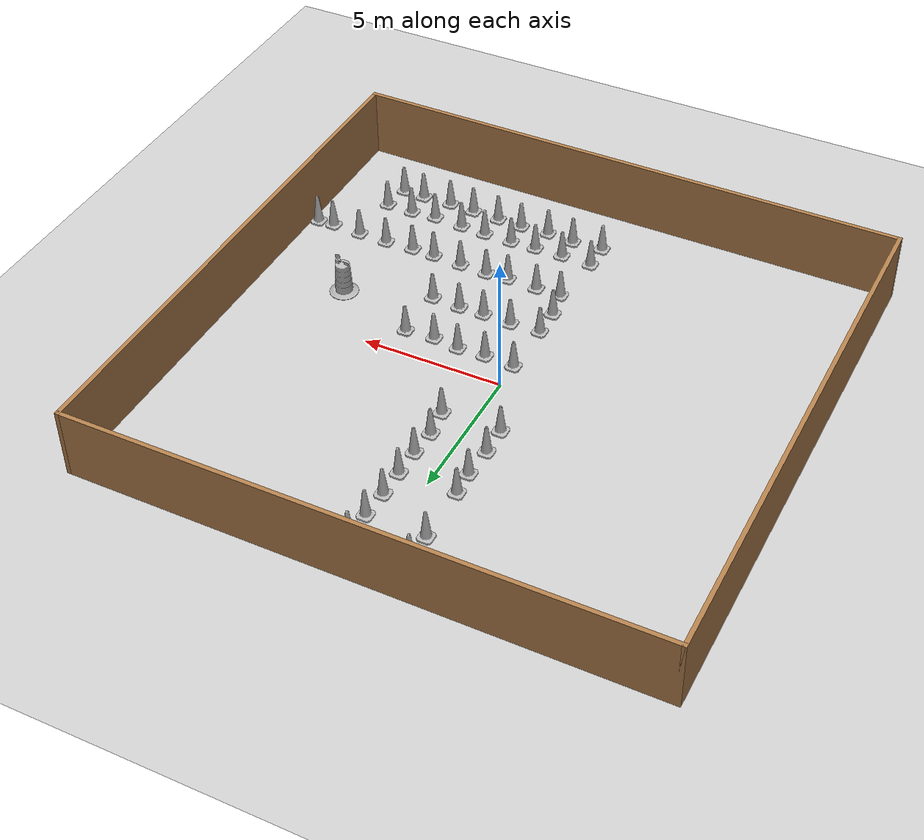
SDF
<sdf version="1.7">
 <world name="default">
  <model name="ground_plane">
   <static>1</static>
   <link name="link">
    <collision name="collision">
     <geometry><plane><normal>0 0 1</normal><size>100 100</size></plane></geometry>
     <surface>
      <contact><collide_bitmask>65535</collide_bitmask></contact>
      <friction><ode><mu>100</mu><mu2>50</mu2></ode></friction>
     </surface>
    </collision>
    <visual name="visual">
     <cast_shadows>0</cast_shadows>
     <geometry><plane><normal>0 0 1</normal><size>100 100</size></plane></geometry>
     <material>
      <script><uri>file://media/materials/scripts/gazebo.material</uri><name>Gazebo/Grey</name></script>
     </material>
    </visual>
   </link>
  </model>
  <model name="my_building">
   <pose>0.05098 -0.313636 0 0 -0 0</pose>
   <link name="Wall_24">
    <collision name="Wall_24_Collision">
     <geometry><box><size>19.5 0.15 2.5</size></box></geometry>
     <pose>0 0 1.25 0 -0 0</pose>
    </collision>
    <visual name="Wall_24_Visual">
     <pose>0 0 1.25 0 -0 0</pose>
     <geometry><box><size>19.5 0.15 2.5</size></box></geometry>
     <material>
      <script><uri>file://media/materials/scripts/gazebo.material</uri><name>Gazebo/Wood</name></script>
      <ambient>0 0 0 1</ambient>
     </material>
     <meta><layer>0</layer></meta>
    </visual>
    <pose>-10.05 -0 0 0 -0 1.5708</pose>
   </link>
   <link name="Wall_25">
    <collision name="Wall_25_Collision">
     <geometry><box><size>20.25 0.15 2.5</size></box></geometry>
     <pose>0 0 1.25 0 -0 0</pose>
    </collision>
    <visual name="Wall_25_Visual">
     <pose>0 0 1.25 0 -0 0</pose>
     <geometry><box><size>20.25 0.15 2.5</size></box></geometry>
     <material>
      <script><uri>file://media/materials/scripts/gazebo.material</uri><name>Gazebo/Wood</name></script>
      <ambient>1 1 1 1</ambient>
     </material>
     <meta><layer>0</layer></meta>
    </visual>
    <pose>-0 9.675 0 0 -0 0</pose>
   </link>
   <link name="Wall_26">
    <collision name="Wall_26_Collision">
     <geometry><box><size>19.5 0.15 2.5</size></box></geometry>
     <pose>0 0 1.25 0 -0 0</pose>
    </collision>
    <visual name="Wall_26_Visual">
     <pose>0 0 1.25 0 -0 0</pose>
     <geometry><box><size>19.5 0.15 2.5</size></box></geometry>
     <material>
      <script><uri>file://media/materials/scripts/gazebo.material</uri><name>Gazebo/Wood</name></script>
      <ambient>1 1 1 1</ambient>
     </material>
     <meta><layer>0</layer></meta>
    </visual>
    <pose>10.05 -0 0 0 -0 -1.5708</pose>
   </link>
   <link name="Wall_29">
    <collision name="Wall_29_Collision">
     <geometry><box><size>20.25 0.15 2.5</size></box></geometry>
     <pose>0 0 1.25 0 -0 0</pose>
    </collision>
    <visual name="Wall_29_Visual">
     <pose>0 0 1.25 0 -0 0</pose>
     <geometry><box><size>20.25 0.15 2.5</size></box></geometry>
     <material>
      <script><uri>file://media/materials/scripts/gazebo.material</uri><name>Gazebo/Wood</name></script>
      <ambient>1 1 1 1</ambient>
     </material>
     <meta><layer>0</layer></meta>
    </visual>
    <pose>-0 -9.675 0 0 -0 3.14159</pose>
   </link>
   <static>1</static>
  </model>
  <model name="Construction Cone_clone">
   <link name="link">
    <collision name="collision">
     <geometry>
      <mesh><scale>10 10 10</scale><uri>model://construction_cone/meshes/construction_cone.dae</uri></mesh>
     </geometry>
    </collision>
    <visual name="visual">
     <geometry>
      <mesh><scale>10 10 10</scale><uri>model://construction_cone/meshes/construction_cone.dae</uri></mesh>
     </geometry>
    </visual>
    <inertial>
     <inertia><ixx>1</ixx><ixy>0</ixy><ixz>0</ixz><iyy>1</iyy><iyz>0</iyz><izz>1</izz></inertia>
     <mass>1</mass>
    </inertial>
   </link>
   <pose>1.00618 4.98105 -0 0 -0 0</pose>
  </model>
  <model name="Construction Cone_clone_0">
   <link name="link">
    <collision name="collision">
     <geometry>
      <mesh><scale>10 10 10</scale><uri>model://construction_cone/meshes/construction_cone.dae</uri></mesh>
     </geometry>
    </collision>
    <visual name="visual">
     <geometry>
      <mesh><scale>10 10 10</scale><uri>model://construction_cone/meshes/construction_cone.dae</uri></mesh>
     </geometry>
    </visual>
    <inertial>
     <inertia><ixx>1</ixx><ixy>0</ixy><ixz>0</ixz><iyy>1</iyy><iyz>0</iyz><izz>1</izz></inertia>
     <mass>1</mass>
    </inertial>
   </link>
   <pose>1.00192 3.98917 1e-06 -3e-06 0 0</pose>
  </model>
  <model name="Construction Cone_clone_1">
   <link name="link">
    <collision name="collision">
     <geometry>
      <mesh><scale>10 10 10</scale><uri>model://construction_cone/meshes/construction_cone.dae</uri></mesh>
     </geometry>
    </collision>
    <visual name="visual">
     <geometry>
      <mesh><scale>10 10 10</scale><uri>model://construction_cone/meshes/construction_cone.dae</uri></mesh>
     </geometry>
    </visual>
    <inertial>
     <inertia><ixx>1</ixx><ixy>0</ixy><ixz>0</ixz><iyy>1</iyy><iyz>0</iyz><izz>1</izz></inertia>
     <mass>1</mass>
    </inertial>
   </link>
   <pose>-0.935036 4.0771 -6e-06 -4e-06 0 0</pose>
  </model>
  <model name="Construction Cone_clone_2">
   <link name="link">
    <collision name="collision">
     <geometry>
      <mesh><scale>10 10 10</scale><uri>model://construction_cone/meshes/construction_cone.dae</uri></mesh>
     </geometry>
    </collision>
    <visual name="visual">
     <geometry>
      <mesh><scale>10 10 10</scale><uri>model://construction_cone/meshes/construction_cone.dae</uri></mesh>
     </geometry>
    </visual>
    <inertial>
     <inertia><ixx>1</ixx><ixy>0</ixy><ixz>0</ixz><iyy>1</iyy><iyz>0</iyz><izz>1</izz></inertia>
     <mass>1</mass>
    </inertial>
   </link>
   <pose>1.07458 2.00845 0 -0 -0 -0</pose>
  </model>
  <model name="Construction Cone_clone_3">
   <link name="link">
    <collision name="collision">
     <geometry>
      <mesh><scale>10 10 10</scale><uri>model://construction_cone/meshes/construction_cone.dae</uri></mesh>
     </geometry>
    </collision>
    <visual name="visual">
     <geometry>
      <mesh><scale>10 10 10</scale><uri>model://construction_cone/meshes/construction_cone.dae</uri></mesh>
     </geometry>
    </visual>
    <inertial>
     <inertia><ixx>1</ixx><ixy>0</ixy><ixz>0</ixz><iyy>1</iyy><iyz>0</iyz><izz>1</izz></inertia>
     <mass>1</mass>
    </inertial>
   </link>
   <pose>-0.980101 1.94573 -0 0 -0 0</pose>
  </model>
  <model name="Construction Cone_clone_4">
   <link name="link">
    <collision name="collision">
     <geometry>
      <mesh><scale>10 10 10</scale><uri>model://construction_cone/meshes/construction_cone.dae</uri></mesh>
     </geometry>
    </collision>
    <visual name="visual">
     <geometry>
      <mesh><scale>10 10 10</scale><uri>model://construction_cone/meshes/construction_cone.dae</uri></mesh>
     </geometry>
    </visual>
    <inertial>
     <inertia><ixx>1</ixx><ixy>0</ixy><ixz>0</ixz><iyy>1</iyy><iyz>0</iyz><izz>1</izz></inertia>
     <mass>1</mass>
    </inertial>
   </link>
   <pose>-1.00552 6.97865 -0 1e-06 -0 0</pose>
  </model>
  <model name="Construction Cone_clone_5">
   <link name="link">
    <collision name="collision">
     <geometry>
      <mesh><scale>10 10 10</scale><uri>model://construction_cone/meshes/construction_cone.dae</uri></mesh>
     </geometry>
    </collision>
    <visual name="visual">
     <geometry>
      <mesh><scale>10 10 10</scale><uri>model://construction_cone/meshes/construction_cone.dae</uri></mesh>
     </geometry>
    </visual>
    <inertial>
     <inertia><ixx>1</ixx><ixy>0</ixy><ixz>0</ixz><iyy>1</iyy><iyz>0</iyz><izz>1</izz></inertia>
     <mass>1</mass>
    </inertial>
   </link>
   <pose>-0.990239 7.96121 0 -0 -0 -0</pose>
  </model>
  <model name="Construction Cone_clone_6">
   <link name="link">
    <collision name="collision">
     <geometry>
      <mesh><scale>10 10 10</scale><uri>model://construction_cone/meshes/construction_cone.dae</uri></mesh>
     </geometry>
    </collision>
    <visual name="visual">
     <geometry>
      <mesh><scale>10 10 10</scale><uri>model://construction_cone/meshes/construction_cone.dae</uri></mesh>
     </geometry>
    </visual>
    <inertial>
     <inertia><ixx>1</ixx><ixy>0</ixy><ixz>0</ixz><iyy>1</iyy><iyz>0</iyz><izz>1</izz></inertia>
     <mass>1</mass>
    </inertial>
   </link>
   <pose>1.02593 8.87266 -0 0 -1e-06 0</pose>
  </model>
  <model name="Construction Cone_clone_9">
   <link name="link">
    <collision name="collision">
     <geometry>
      <mesh><scale>10 10 10</scale><uri>model://construction_cone/meshes/construction_cone.dae</uri></mesh>
     </geometry>
    </collision>
    <visual name="visual">
     <geometry>
      <mesh><scale>10 10 10</scale><uri>model://construction_cone/meshes/construction_cone.dae</uri></mesh>
     </geometry>
    </visual>
    <inertial>
     <inertia><ixx>1</ixx><ixy>0</ixy><ixz>0</ixz><iyy>1</iyy><iyz>0</iyz><izz>1</izz></inertia>
     <mass>1</mass>
    </inertial>
   </link>
   <pose>1.06897 7.94604 -0 0 -0 0</pose>
  </model>
  <model name="Construction Cone_clone_10">
   <link name="link">
    <collision name="collision">
     <geometry>
      <mesh><scale>10 10 10</scale><uri>model://construction_cone/meshes/construction_cone.dae</uri></mesh>
     </geometry>
    </collision>
    <visual name="visual">
     <geometry>
      <mesh><scale>10 10 10</scale><uri>model://construction_cone/meshes/construction_cone.dae</uri></mesh>
     </geometry>
    </visual>
    <inertial>
     <inertia><ixx>1</ixx><ixy>0</ixy><ixz>0</ixz><iyy>1</iyy><iyz>0</iyz><izz>1</izz></inertia>
     <mass>1</mass>
    </inertial>
   </link>
   <pose>1.04507 6.98149 -0 0 -1e-06 0</pose>
  </model>
  <model name="Construction Cone_clone_11">
   <link name="link">
    <collision name="collision">
     <geometry>
      <mesh><scale>10 10 10</scale><uri>model://construction_cone/meshes/construction_cone.dae</uri></mesh>
     </geometry>
    </collision>
    <visual name="visual">
     <geometry>
      <mesh><scale>10 10 10</scale><uri>model://construction_cone/meshes/construction_cone.dae</uri></mesh>
     </geometry>
    </visual>
    <inertial>
     <inertia><ixx>1</ixx><ixy>0</ixy><ixz>0</ixz><iyy>1</iyy><iyz>0</iyz><izz>1</izz></inertia>
     <mass>1</mass>
    </inertial>
   </link>
   <pose>-0.986262 4.9569 -0 0 -0 0</pose>
  </model>
  <model name="Construction Cone_clone_12">
   <link name="link">
    <collision name="collision">
     <geometry>
      <mesh><scale>10 10 10</scale><uri>model://construction_cone/meshes/construction_cone.dae</uri></mesh>
     </geometry>
    </collision>
    <visual name="visual">
     <geometry>
      <mesh><scale>10 10 10</scale><uri>model://construction_cone/meshes/construction_cone.dae</uri></mesh>
     </geometry>
    </visual>
    <inertial>
     <inertia><ixx>1</ixx><ixy>0</ixy><ixz>0</ixz><iyy>1</iyy><iyz>0</iyz><izz>1</izz></inertia>
     <mass>1</mass>
    </inertial>
   </link>
   <pose>1.00019 5.97963 -9e-06 -1e-06 -0 -0</pose>
  </model>
  <model name="Construction Cone_clone_17">
   <link name="link">
    <collision name="collision">
     <geometry>
      <mesh><scale>10 10 10</scale><uri>model://construction_cone/meshes/construction_cone.dae</uri></mesh>
     </geometry>
    </collision>
    <visual name="visual">
     <geometry>
      <mesh><scale>10 10 10</scale><uri>model://construction_cone/meshes/construction_cone.dae</uri></mesh>
     </geometry>
    </visual>
    <inertial>
     <inertia><ixx>1</ixx><ixy>0</ixy><ixz>0</ixz><iyy>1</iyy><iyz>0</iyz><izz>1</izz></inertia>
     <mass>1</mass>
    </inertial>
   </link>
   <pose>-1.00066 2.97181 0 -0 -0 -0</pose>
  </model>
  <model name="Construction Cone_clone_18">
   <link name="link">
    <collision name="collision">
     <geometry>
      <mesh><scale>10 10 10</scale><uri>model://construction_cone/meshes/construction_cone.dae</uri></mesh>
     </geometry>
    </collision>
    <visual name="visual">
     <geometry>
      <mesh><scale>10 10 10</scale><uri>model://construction_cone/meshes/construction_cone.dae</uri></mesh>
     </geometry>
    </visual>
    <inertial>
     <inertia><ixx>1</ixx><ixy>0</ixy><ixz>0</ixz><iyy>1</iyy><iyz>0</iyz><izz>1</izz></inertia>
     <mass>1</mass>
    </inertial>
   </link>
   <pose>0.944633 3.00497 -6e-06 -4e-06 0 0</pose>
  </model>
  <model name="Construction Cone_clone_16_clone_42">
   <link name="link">
    <collision name="collision">
     <geometry>
      <mesh><scale>10 10 10</scale><uri>model://construction_cone/meshes/construction_cone.dae</uri></mesh>
     </geometry>
    </collision>
    <visual name="visual">
     <geometry>
      <mesh><scale>10 10 10</scale><uri>model://construction_cone/meshes/construction_cone.dae</uri></mesh>
     </geometry>
    </visual>
    <inertial>
     <inertia><ixx>1</ixx><ixy>0</ixy><ixz>0</ixz><iyy>1</iyy><iyz>0</iyz><izz>1</izz></inertia>
     <mass>1</mass>
    </inertial>
   </link>
   <pose>-0.093011 -7.99219 -0 0 -1e-06 0</pose>
  </model>
  <model name="Construction Cone_clone_16_clone_43">
   <link name="link">
    <collision name="collision">
     <geometry>
      <mesh><scale>10 10 10</scale><uri>model://construction_cone/meshes/construction_cone.dae</uri></mesh>
     </geometry>
    </collision>
    <visual name="visual">
     <geometry>
      <mesh><scale>10 10 10</scale><uri>model://construction_cone/meshes/construction_cone.dae</uri></mesh>
     </geometry>
    </visual>
    <inertial>
     <inertia><ixx>1</ixx><ixy>0</ixy><ixz>0</ixz><iyy>1</iyy><iyz>0</iyz><izz>1</izz></inertia>
     <mass>1</mass>
    </inertial>
   </link>
   <pose>1.01673 -7.92565 -6e-06 2e-06 -0 0</pose>
  </model>
  <model name="Construction Cone_clone_16_clone_44">
   <link name="link">
    <collision name="collision">
     <geometry>
      <mesh><scale>10 10 10</scale><uri>model://construction_cone/meshes/construction_cone.dae</uri></mesh>
     </geometry>
    </collision>
    <visual name="visual">
     <geometry>
      <mesh><scale>10 10 10</scale><uri>model://construction_cone/meshes/construction_cone.dae</uri></mesh>
     </geometry>
    </visual>
    <inertial>
     <inertia><ixx>1</ixx><ixy>0</ixy><ixz>0</ixz><iyy>1</iyy><iyz>0</iyz><izz>1</izz></inertia>
     <mass>1</mass>
    </inertial>
   </link>
   <pose>2.01359 -7.99723 -4e-06 4e-06 -1e-06 0</pose>
  </model>
  <model name="Construction Cone_clone_16_clone_45">
   <link name="link">
    <collision name="collision">
     <geometry>
      <mesh><scale>10 10 10</scale><uri>model://construction_cone/meshes/construction_cone.dae</uri></mesh>
     </geometry>
    </collision>
    <visual name="visual">
     <geometry>
      <mesh><scale>10 10 10</scale><uri>model://construction_cone/meshes/construction_cone.dae</uri></mesh>
     </geometry>
    </visual>
    <inertial>
     <inertia><ixx>1</ixx><ixy>0</ixy><ixz>0</ixz><iyy>1</iyy><iyz>0</iyz><izz>1</izz></inertia>
     <mass>1</mass>
    </inertial>
   </link>
   <pose>3.05139 -7.93503 -1e-05 -1e-06 0 0</pose>
  </model>
  <model name="Construction Cone_clone_16_clone_46">
   <link name="link">
    <collision name="collision">
     <geometry>
      <mesh><scale>10 10 10</scale><uri>model://construction_cone/meshes/construction_cone.dae</uri></mesh>
     </geometry>
    </collision>
    <visual name="visual">
     <geometry>
      <mesh><scale>10 10 10</scale><uri>model://construction_cone/meshes/construction_cone.dae</uri></mesh>
     </geometry>
    </visual>
    <inertial>
     <inertia><ixx>1</ixx><ixy>0</ixy><ixz>0</ixz><iyy>1</iyy><iyz>0</iyz><izz>1</izz></inertia>
     <mass>1</mass>
    </inertial>
   </link>
   <pose>3.98556 -7.96249 -6e-06 -4e-06 0 0</pose>
  </model>
  <model name="Construction Cone_clone_16_clone_47">
   <link name="link">
    <collision name="collision">
     <geometry>
      <mesh><scale>10 10 10</scale><uri>model://construction_cone/meshes/construction_cone.dae</uri></mesh>
     </geometry>
    </collision>
    <visual name="visual">
     <geometry>
      <mesh><scale>10 10 10</scale><uri>model://construction_cone/meshes/construction_cone.dae</uri></mesh>
     </geometry>
    </visual>
    <inertial>
     <inertia><ixx>1</ixx><ixy>0</ixy><ixz>0</ixz><iyy>1</iyy><iyz>0</iyz><izz>1</izz></inertia>
     <mass>1</mass>
    </inertial>
   </link>
   <pose>5.00339 -7.99684 -9e-06 -1e-06 -0 -0</pose>
  </model>
  <model name="Construction Cone_clone_16_clone_48">
   <link name="link">
    <collision name="collision">
     <geometry>
      <mesh><scale>10 10 10</scale><uri>model://construction_cone/meshes/construction_cone.dae</uri></mesh>
     </geometry>
    </collision>
    <visual name="visual">
     <geometry>
      <mesh><scale>10 10 10</scale><uri>model://construction_cone/meshes/construction_cone.dae</uri></mesh>
     </geometry>
    </visual>
    <inertial>
     <inertia><ixx>1</ixx><ixy>0</ixy><ixz>0</ixz><iyy>1</iyy><iyz>0</iyz><izz>1</izz></inertia>
     <mass>1</mass>
    </inertial>
   </link>
   <pose>5.96116 -8.03472 -0 0 -1e-06 0</pose>
  </model>
  <model name="Construction Cone_clone_16_clone_49">
   <link name="link">
    <collision name="collision">
     <geometry>
      <mesh><scale>10 10 10</scale><uri>model://construction_cone/meshes/construction_cone.dae</uri></mesh>
     </geometry>
    </collision>
    <visual name="visual">
     <geometry>
      <mesh><scale>10 10 10</scale><uri>model://construction_cone/meshes/construction_cone.dae</uri></mesh>
     </geometry>
    </visual>
    <inertial>
     <inertia><ixx>1</ixx><ixy>0</ixy><ixz>0</ixz><iyy>1</iyy><iyz>0</iyz><izz>1</izz></inertia>
     <mass>1</mass>
    </inertial>
   </link>
   <pose>7.03824 -7.98914 -0 0 -0 0</pose>
  </model>
  <model name="Construction Cone_clone_16_clone_50">
   <link name="link">
    <collision name="collision">
     <geometry>
      <mesh><scale>10 10 10</scale><uri>model://construction_cone/meshes/construction_cone.dae</uri></mesh>
     </geometry>
    </collision>
    <visual name="visual">
     <geometry>
      <mesh><scale>10 10 10</scale><uri>model://construction_cone/meshes/construction_cone.dae</uri></mesh>
     </geometry>
    </visual>
    <inertial>
     <inertia><ixx>1</ixx><ixy>0</ixy><ixz>0</ixz><iyy>1</iyy><iyz>0</iyz><izz>1</izz></inertia>
     <mass>1</mass>
    </inertial>
   </link>
   <pose>7.86495 -8.02301 -0 0 -0 0</pose>
  </model>
  <model name="Construction Cone_clone_16_clone_51">
   <link name="link">
    <collision name="collision">
     <geometry>
      <mesh><scale>10 10 10</scale><uri>model://construction_cone/meshes/construction_cone.dae</uri></mesh>
     </geometry>
    </collision>
    <visual name="visual">
     <geometry>
      <mesh><scale>10 10 10</scale><uri>model://construction_cone/meshes/construction_cone.dae</uri></mesh>
     </geometry>
    </visual>
    <inertial>
     <inertia><ixx>1</ixx><ixy>0</ixy><ixz>0</ixz><iyy>1</iyy><iyz>0</iyz><izz>1</izz></inertia>
     <mass>1</mass>
    </inertial>
   </link>
   <pose>8 -7 -1e-05 -1e-06 0 0</pose>
  </model>
  <model name="Construction Cone_clone_16_clone_52">
   <link name="link">
    <collision name="collision">
     <geometry>
      <mesh><scale>10 10 10</scale><uri>model://construction_cone/meshes/construction_cone.dae</uri></mesh>
     </geometry>
    </collision>
    <visual name="visual">
     <geometry>
      <mesh><scale>10 10 10</scale><uri>model://construction_cone/meshes/construction_cone.dae</uri></mesh>
     </geometry>
    </visual>
    <inertial>
     <inertia><ixx>1</ixx><ixy>0</ixy><ixz>0</ixz><iyy>1</iyy><iyz>0</iyz><izz>1</izz></inertia>
     <mass>1</mass>
    </inertial>
   </link>
   <pose>9.77379 -5.03681 -0 0 -0 0.004282</pose>
  </model>
  <model name="Construction Cone_clone_16_clone_53">
   <link name="link">
    <collision name="collision">
     <geometry>
      <mesh><scale>10 10 10</scale><uri>model://construction_cone/meshes/construction_cone.dae</uri></mesh>
     </geometry>
    </collision>
    <visual name="visual">
     <geometry>
      <mesh><scale>10 10 10</scale><uri>model://construction_cone/meshes/construction_cone.dae</uri></mesh>
     </geometry>
    </visual>
    <inertial>
     <inertia><ixx>1</ixx><ixy>0</ixy><ixz>0</ixz><iyy>1</iyy><iyz>0</iyz><izz>1</izz></inertia>
     <mass>1</mass>
    </inertial>
   </link>
   <pose>9.16677 -5.06825 -8e-06 0 1e-06 0</pose>
  </model>
  <model name="Construction Cone_clone_16_clone_54">
   <link name="link">
    <collision name="collision">
     <geometry>
      <mesh><scale>10 10 10</scale><uri>model://construction_cone/meshes/construction_cone.dae</uri></mesh>
     </geometry>
    </collision>
    <visual name="visual">
     <geometry>
      <mesh><scale>10 10 10</scale><uri>model://construction_cone/meshes/construction_cone.dae</uri></mesh>
     </geometry>
    </visual>
    <inertial>
     <inertia><ixx>1</ixx><ixy>0</ixy><ixz>0</ixz><iyy>1</iyy><iyz>0</iyz><izz>1</izz></inertia>
     <mass>1</mass>
    </inertial>
   </link>
   <pose>8.06837 -5.02551 -0 0 -1e-06 0</pose>
  </model>
  <model name="Construction Cone_clone_16_clone_55">
   <link name="link">
    <collision name="collision">
     <geometry>
      <mesh><scale>10 10 10</scale><uri>model://construction_cone/meshes/construction_cone.dae</uri></mesh>
     </geometry>
    </collision>
    <visual name="visual">
     <geometry>
      <mesh><scale>10 10 10</scale><uri>model://construction_cone/meshes/construction_cone.dae</uri></mesh>
     </geometry>
    </visual>
    <inertial>
     <inertia><ixx>1</ixx><ixy>0</ixy><ixz>0</ixz><iyy>1</iyy><iyz>0</iyz><izz>1</izz></inertia>
     <mass>1</mass>
    </inertial>
   </link>
   <pose>6.98357 -5.01819 -0 0 -0 0</pose>
  </model>
  <model name="Construction Cone_clone_16_clone_56">
   <link name="link">
    <collision name="collision">
     <geometry>
      <mesh><scale>10 10 10</scale><uri>model://construction_cone/meshes/construction_cone.dae</uri></mesh>
     </geometry>
    </collision>
    <visual name="visual">
     <geometry>
      <mesh><scale>10 10 10</scale><uri>model://construction_cone/meshes/construction_cone.dae</uri></mesh>
     </geometry>
    </visual>
    <inertial>
     <inertia><ixx>1</ixx><ixy>0</ixy><ixz>0</ixz><iyy>1</iyy><iyz>0</iyz><izz>1</izz></inertia>
     <mass>1</mass>
    </inertial>
   </link>
   <pose>5.93798 -5.0688 -0 0 -1e-06 0</pose>
  </model>
  <model name="Construction Cone_clone_16_clone_57">
   <link name="link">
    <collision name="collision">
     <geometry>
      <mesh><scale>10 10 10</scale><uri>model://construction_cone/meshes/construction_cone.dae</uri></mesh>
     </geometry>
    </collision>
    <visual name="visual">
     <geometry>
      <mesh><scale>10 10 10</scale><uri>model://construction_cone/meshes/construction_cone.dae</uri></mesh>
     </geometry>
    </visual>
    <inertial>
     <inertia><ixx>1</ixx><ixy>0</ixy><ixz>0</ixz><iyy>1</iyy><iyz>0</iyz><izz>1</izz></inertia>
     <mass>1</mass>
    </inertial>
   </link>
   <pose>5.08082 -5.04785 -0 0 -0 0</pose>
  </model>
  <model name="Construction Cone_clone_16_clone_58">
   <link name="link">
    <collision name="collision">
     <geometry>
      <mesh><scale>10 10 10</scale><uri>model://construction_cone/meshes/construction_cone.dae</uri></mesh>
     </geometry>
    </collision>
    <visual name="visual">
     <geometry>
      <mesh><scale>10 10 10</scale><uri>model://construction_cone/meshes/construction_cone.dae</uri></mesh>
     </geometry>
    </visual>
    <inertial>
     <inertia><ixx>1</ixx><ixy>0</ixy><ixz>0</ixz><iyy>1</iyy><iyz>0</iyz><izz>1</izz></inertia>
     <mass>1</mass>
    </inertial>
   </link>
   <pose>4.00473 -5.00384 0 -0 -0 -0</pose>
  </model>
  <model name="Construction Cone_clone_16_clone_59">
   <link name="link">
    <collision name="collision">
     <geometry>
      <mesh><scale>10 10 10</scale><uri>model://construction_cone/meshes/construction_cone.dae</uri></mesh>
     </geometry>
    </collision>
    <visual name="visual">
     <geometry>
      <mesh><scale>10 10 10</scale><uri>model://construction_cone/meshes/construction_cone.dae</uri></mesh>
     </geometry>
    </visual>
    <inertial>
     <inertia><ixx>1</ixx><ixy>0</ixy><ixz>0</ixz><iyy>1</iyy><iyz>0</iyz><izz>1</izz></inertia>
     <mass>1</mass>
    </inertial>
   </link>
   <pose>2.977 -4.96881 -0 0 -0 0</pose>
  </model>
  <model name="Construction Cone_clone_16_clone_60">
   <link name="link">
    <collision name="collision">
     <geometry>
      <mesh><scale>10 10 10</scale><uri>model://construction_cone/meshes/construction_cone.dae</uri></mesh>
     </geometry>
    </collision>
    <visual name="visual">
     <geometry>
      <mesh><scale>10 10 10</scale><uri>model://construction_cone/meshes/construction_cone.dae</uri></mesh>
     </geometry>
    </visual>
    <inertial>
     <inertia><ixx>1</ixx><ixy>0</ixy><ixz>0</ixz><iyy>1</iyy><iyz>0</iyz><izz>1</izz></inertia>
     <mass>1</mass>
    </inertial>
   </link>
   <pose>2.17262 -5.02908 -9e-06 0 -0 0</pose>
  </model>
  <model name="Construction Cone_clone_16_clone_61">
   <link name="link">
    <collision name="collision">
     <geometry>
      <mesh><scale>10 10 10</scale><uri>model://construction_cone/meshes/construction_cone.dae</uri></mesh>
     </geometry>
    </collision>
    <visual name="visual">
     <geometry>
      <mesh><scale>10 10 10</scale><uri>model://construction_cone/meshes/construction_cone.dae</uri></mesh>
     </geometry>
    </visual>
    <inertial>
     <inertia><ixx>1</ixx><ixy>0</ixy><ixz>0</ixz><iyy>1</iyy><iyz>0</iyz><izz>1</izz></inertia>
     <mass>1</mass>
    </inertial>
   </link>
   <pose>1.05909 -4.98706 -0 0 -1e-06 0</pose>
  </model>
  <model name="Construction Cone_clone_16_clone_62">
   <link name="link">
    <collision name="collision">
     <geometry>
      <mesh><scale>10 10 10</scale><uri>model://construction_cone/meshes/construction_cone.dae</uri></mesh>
     </geometry>
    </collision>
    <visual name="visual">
     <geometry>
      <mesh><scale>10 10 10</scale><uri>model://construction_cone/meshes/construction_cone.dae</uri></mesh>
     </geometry>
    </visual>
    <inertial>
     <inertia><ixx>1</ixx><ixy>0</ixy><ixz>0</ixz><iyy>1</iyy><iyz>0</iyz><izz>1</izz></inertia>
     <mass>1</mass>
    </inertial>
   </link>
   <pose>0.154939 -5.00513 -0 0 -0 0</pose>
  </model>
  <model name="Construction Cone_clone_16_clone_63">
   <link name="link">
    <collision name="collision">
     <geometry>
      <mesh><scale>10 10 10</scale><uri>model://construction_cone/meshes/construction_cone.dae</uri></mesh>
     </geometry>
    </collision>
    <visual name="visual">
     <geometry>
      <mesh><scale>10 10 10</scale><uri>model://construction_cone/meshes/construction_cone.dae</uri></mesh>
     </geometry>
    </visual>
    <inertial>
     <inertia><ixx>1</ixx><ixy>0</ixy><ixz>0</ixz><iyy>1</iyy><iyz>0</iyz><izz>1</izz></inertia>
     <mass>1</mass>
    </inertial>
   </link>
   <pose>6.99932 -6.98303 0 -0 -0 -0</pose>
  </model>
  <model name="Construction Cone_clone_16_clone_64">
   <link name="link">
    <collision name="collision">
     <geometry>
      <mesh><scale>10 10 10</scale><uri>model://construction_cone/meshes/construction_cone.dae</uri></mesh>
     </geometry>
    </collision>
    <visual name="visual">
     <geometry>
      <mesh><scale>10 10 10</scale><uri>model://construction_cone/meshes/construction_cone.dae</uri></mesh>
     </geometry>
    </visual>
    <inertial>
     <inertia><ixx>1</ixx><ixy>0</ixy><ixz>0</ixz><iyy>1</iyy><iyz>0</iyz><izz>1</izz></inertia>
     <mass>1</mass>
    </inertial>
   </link>
   <pose>6.08052 -7.0619 -2e-06 -3e-06 -1e-06 -0</pose>
  </model>
  <model name="Construction Cone_clone_16_clone_65">
   <link name="link">
    <collision name="collision">
     <geometry>
      <mesh><scale>10 10 10</scale><uri>model://construction_cone/meshes/construction_cone.dae</uri></mesh>
     </geometry>
    </collision>
    <visual name="visual">
     <geometry>
      <mesh><scale>10 10 10</scale><uri>model://construction_cone/meshes/construction_cone.dae</uri></mesh>
     </geometry>
    </visual>
    <inertial>
     <inertia><ixx>1</ixx><ixy>0</ixy><ixz>0</ixz><iyy>1</iyy><iyz>0</iyz><izz>1</izz></inertia>
     <mass>1</mass>
    </inertial>
   </link>
   <pose>4.98571 -7.00816 -0 0 -0 0</pose>
  </model>
  <model name="Construction Cone_clone_16_clone_66">
   <link name="link">
    <collision name="collision">
     <geometry>
      <mesh><scale>10 10 10</scale><uri>model://construction_cone/meshes/construction_cone.dae</uri></mesh>
     </geometry>
    </collision>
    <visual name="visual">
     <geometry>
      <mesh><scale>10 10 10</scale><uri>model://construction_cone/meshes/construction_cone.dae</uri></mesh>
     </geometry>
    </visual>
    <inertial>
     <inertia><ixx>1</ixx><ixy>0</ixy><ixz>0</ixz><iyy>1</iyy><iyz>0</iyz><izz>1</izz></inertia>
     <mass>1</mass>
    </inertial>
   </link>
   <pose>4.03525 -6.96964 -9e-06 -1e-06 -0 -0</pose>
  </model>
  <model name="Construction Cone_clone_16_clone_67">
   <link name="link">
    <collision name="collision">
     <geometry>
      <mesh><scale>10 10 10</scale><uri>model://construction_cone/meshes/construction_cone.dae</uri></mesh>
     </geometry>
    </collision>
    <visual name="visual">
     <geometry>
      <mesh><scale>10 10 10</scale><uri>model://construction_cone/meshes/construction_cone.dae</uri></mesh>
     </geometry>
    </visual>
    <inertial>
     <inertia><ixx>1</ixx><ixy>0</ixy><ixz>0</ixz><iyy>1</iyy><iyz>0</iyz><izz>1</izz></inertia>
     <mass>1</mass>
    </inertial>
   </link>
   <pose>2.99112 -6.97246 -2e-06 -3e-06 -1e-06 -0</pose>
  </model>
  <model name="Construction Cone_clone_16_clone_68">
   <link name="link">
    <collision name="collision">
     <geometry>
      <mesh><scale>10 10 10</scale><uri>model://construction_cone/meshes/construction_cone.dae</uri></mesh>
     </geometry>
    </collision>
    <visual name="visual">
     <geometry>
      <mesh><scale>10 10 10</scale><uri>model://construction_cone/meshes/construction_cone.dae</uri></mesh>
     </geometry>
    </visual>
    <inertial>
     <inertia><ixx>1</ixx><ixy>0</ixy><ixz>0</ixz><iyy>1</iyy><iyz>0</iyz><izz>1</izz></inertia>
     <mass>1</mass>
    </inertial>
   </link>
   <pose>2.05653 -7.00448 -0 0 -0 0</pose>
  </model>
  <model name="Construction Cone_clone_16_clone_69">
   <link name="link">
    <collision name="collision">
     <geometry>
      <mesh><scale>10 10 10</scale><uri>model://construction_cone/meshes/construction_cone.dae</uri></mesh>
     </geometry>
    </collision>
    <visual name="visual">
     <geometry>
      <mesh><scale>10 10 10</scale><uri>model://construction_cone/meshes/construction_cone.dae</uri></mesh>
     </geometry>
    </visual>
    <inertial>
     <inertia><ixx>1</ixx><ixy>0</ixy><ixz>0</ixz><iyy>1</iyy><iyz>0</iyz><izz>1</izz></inertia>
     <mass>1</mass>
    </inertial>
   </link>
   <pose>1.0255 -7.03043 -6e-06 -4e-06 0 0</pose>
  </model>
  <model name="Construction Cone_clone_16_clone_70">
   <link name="link">
    <collision name="collision">
     <geometry>
      <mesh><scale>10 10 10</scale><uri>model://construction_cone/meshes/construction_cone.dae</uri></mesh>
     </geometry>
    </collision>
    <visual name="visual">
     <geometry>
      <mesh><scale>10 10 10</scale><uri>model://construction_cone/meshes/construction_cone.dae</uri></mesh>
     </geometry>
    </visual>
    <inertial>
     <inertia><ixx>1</ixx><ixy>0</ixy><ixz>0</ixz><iyy>1</iyy><iyz>0</iyz><izz>1</izz></inertia>
     <mass>1</mass>
    </inertial>
   </link>
   <pose>-0.081115 -7.01299 -0 0 -1e-06 0</pose>
  </model>
  <model name="Construction Cone_clone_16_clone_76">
   <link name="link">
    <collision name="collision">
     <geometry>
      <mesh><scale>10 10 10</scale><uri>model://construction_cone/meshes/construction_cone.dae</uri></mesh>
     </geometry>
    </collision>
    <visual name="visual">
     <geometry>
      <mesh><scale>10 10 10</scale><uri>model://construction_cone/meshes/construction_cone.dae</uri></mesh>
     </geometry>
    </visual>
    <inertial>
     <inertia><ixx>1</ixx><ixy>0</ixy><ixz>0</ixz><iyy>1</iyy><iyz>0</iyz><izz>1</izz></inertia>
     <mass>1</mass>
    </inertial>
   </link>
   <pose>-0.029988 -3.9874 -8e-06 1e-06 -0 0</pose>
  </model>
  <model name="Construction Cone_clone_16_clone_78">
   <link name="link">
    <collision name="collision">
     <geometry>
      <mesh><scale>10 10 10</scale><uri>model://construction_cone/meshes/construction_cone.dae</uri></mesh>
     </geometry>
    </collision>
    <visual name="visual">
     <geometry>
      <mesh><scale>10 10 10</scale><uri>model://construction_cone/meshes/construction_cone.dae</uri></mesh>
     </geometry>
    </visual>
    <inertial>
     <inertia><ixx>1</ixx><ixy>0</ixy><ixz>0</ixz><iyy>1</iyy><iyz>0</iyz><izz>1</izz></inertia>
     <mass>1</mass>
    </inertial>
   </link>
   <pose>-0.034042 -2.95359 -0 0 -1e-06 0</pose>
  </model>
  <model name="Construction Cone_clone_16_clone_80">
   <link name="link">
    <collision name="collision">
     <geometry>
      <mesh><scale>10 10 10</scale><uri>model://construction_cone/meshes/construction_cone.dae</uri></mesh>
     </geometry>
    </collision>
    <visual name="visual">
     <geometry>
      <mesh><scale>10 10 10</scale><uri>model://construction_cone/meshes/construction_cone.dae</uri></mesh>
     </geometry>
    </visual>
    <inertial>
     <inertia><ixx>1</ixx><ixy>0</ixy><ixz>0</ixz><iyy>1</iyy><iyz>0</iyz><izz>1</izz></inertia>
     <mass>1</mass>
    </inertial>
   </link>
   <pose>1.04524 -2.90432 -0 0 -0 0</pose>
  </model>
  <model name="Construction Cone_clone_16_clone_80_clone_0">
   <link name="link">
    <collision name="collision">
     <geometry>
      <mesh><scale>10 10 10</scale><uri>model://construction_cone/meshes/construction_cone.dae</uri></mesh>
     </geometry>
    </collision>
    <visual name="visual">
     <geometry>
      <mesh><scale>10 10 10</scale><uri>model://construction_cone/meshes/construction_cone.dae</uri></mesh>
     </geometry>
    </visual>
    <inertial>
     <inertia><ixx>1</ixx><ixy>0</ixy><ixz>0</ixz><iyy>1</iyy><iyz>0</iyz><izz>1</izz></inertia>
     <mass>1</mass>
    </inertial>
   </link>
   <pose>2.07093 -2.94438 -1e-05 -0 -0 -0</pose>
  </model>
  <model name="Construction Cone_clone_16_clone_80_clone_2">
   <link name="link">
    <collision name="collision">
     <geometry>
      <mesh><scale>10 10 10</scale><uri>model://construction_cone/meshes/construction_cone.dae</uri></mesh>
     </geometry>
    </collision>
    <visual name="visual">
     <geometry>
      <mesh><scale>10 10 10</scale><uri>model://construction_cone/meshes/construction_cone.dae</uri></mesh>
     </geometry>
    </visual>
    <inertial>
     <inertia><ixx>1</ixx><ixy>0</ixy><ixz>0</ixz><iyy>1</iyy><iyz>0</iyz><izz>1</izz></inertia>
     <mass>1</mass>
    </inertial>
   </link>
   <pose>-0 -1 -0 0 -0 0</pose>
  </model>
  <model name="Construction Cone_clone_16_clone_80_clone_3">
   <link name="link">
    <collision name="collision">
     <geometry>
      <mesh><scale>10 10 10</scale><uri>model://construction_cone/meshes/construction_cone.dae</uri></mesh>
     </geometry>
    </collision>
    <visual name="visual">
     <geometry>
      <mesh><scale>10 10 10</scale><uri>model://construction_cone/meshes/construction_cone.dae</uri></mesh>
     </geometry>
    </visual>
    <inertial>
     <inertia><ixx>1</ixx><ixy>0</ixy><ixz>0</ixz><iyy>1</iyy><iyz>0</iyz><izz>1</izz></inertia>
     <mass>1</mass>
    </inertial>
   </link>
   <pose>1.07134 -1.04805 -0 0 -0 0</pose>
  </model>
  <model name="Construction Cone_clone_16_clone_80_clone_4">
   <link name="link">
    <collision name="collision">
     <geometry>
      <mesh><scale>10 10 10</scale><uri>model://construction_cone/meshes/construction_cone.dae</uri></mesh>
     </geometry>
    </collision>
    <visual name="visual">
     <geometry>
      <mesh><scale>10 10 10</scale><uri>model://construction_cone/meshes/construction_cone.dae</uri></mesh>
     </geometry>
    </visual>
    <inertial>
     <inertia><ixx>1</ixx><ixy>0</ixy><ixz>0</ixz><iyy>1</iyy><iyz>0</iyz><izz>1</izz></inertia>
     <mass>1</mass>
    </inertial>
   </link>
   <pose>2.05245 -0.997636 -6e-06 -4e-06 0 0</pose>
  </model>
  <model name="Construction Cone_clone_16_clone_80_clone_5">
   <link name="link">
    <collision name="collision">
     <geometry>
      <mesh><scale>10 10 10</scale><uri>model://construction_cone/meshes/construction_cone.dae</uri></mesh>
     </geometry>
    </collision>
    <visual name="visual">
     <geometry>
      <mesh><scale>10 10 10</scale><uri>model://construction_cone/meshes/construction_cone.dae</uri></mesh>
     </geometry>
    </visual>
    <inertial>
     <inertia><ixx>1</ixx><ixy>0</ixy><ixz>0</ixz><iyy>1</iyy><iyz>0</iyz><izz>1</izz></inertia>
     <mass>1</mass>
    </inertial>
   </link>
   <pose>2.99684 -1.11181 -5e-06 -4e-06 1e-06 0</pose>
  </model>
  <model name="Construction Cone_clone_16_clone_80_clone_6">
   <link name="link">
    <collision name="collision">
     <geometry>
      <mesh><scale>10 10 10</scale><uri>model://construction_cone/meshes/construction_cone.dae</uri></mesh>
     </geometry>
    </collision>
    <visual name="visual">
     <geometry>
      <mesh><scale>10 10 10</scale><uri>model://construction_cone/meshes/construction_cone.dae</uri></mesh>
     </geometry>
    </visual>
    <inertial>
     <inertia><ixx>1</ixx><ixy>0</ixy><ixz>0</ixz><iyy>1</iyy><iyz>0</iyz><izz>1</izz></inertia>
     <mass>1</mass>
    </inertial>
   </link>
   <pose>2.97743 -2.91431 -0 2e-06 -2e-06 -0</pose>
  </model>
  <model name="Construction Cone_clone_16_clone_80_clone_7">
   <link name="link">
    <collision name="collision">
     <geometry>
      <mesh><scale>10 10 10</scale><uri>model://construction_cone/meshes/construction_cone.dae</uri></mesh>
     </geometry>
    </collision>
    <visual name="visual">
     <geometry>
      <mesh><scale>10 10 10</scale><uri>model://construction_cone/meshes/construction_cone.dae</uri></mesh>
     </geometry>
    </visual>
    <inertial>
     <inertia><ixx>1</ixx><ixy>0</ixy><ixz>0</ixz><iyy>1</iyy><iyz>0</iyz><izz>1</izz></inertia>
     <mass>1</mass>
    </inertial>
   </link>
   <pose>4.04007 -1.0421 -0 0 -0 0</pose>
  </model>
  <model name="Construction Cone_clone_16_clone_80_clone_8">
   <link name="link">
    <collision name="collision">
     <geometry>
      <mesh><scale>10 10 10</scale><uri>model://construction_cone/meshes/construction_cone.dae</uri></mesh>
     </geometry>
    </collision>
    <visual name="visual">
     <geometry>
      <mesh><scale>10 10 10</scale><uri>model://construction_cone/meshes/construction_cone.dae</uri></mesh>
     </geometry>
    </visual>
    <inertial>
     <inertia><ixx>1</ixx><ixy>0</ixy><ixz>0</ixz><iyy>1</iyy><iyz>0</iyz><izz>1</izz></inertia>
     <mass>1</mass>
    </inertial>
   </link>
   <pose>4.02284 -2.97249 -5e-06 -4e-06 1e-06 0</pose>
  </model>
  <model name="Construction Barrel">
   <link name="link">
    <inertial>
     <pose>0 0 0.4 0 -0 0</pose>
     <mass>500</mass>
     <inertia><ixx>51.2096</ixx><iyy>51.2096</iyy><izz>25</izz><ixy>0</ixy><ixz>0</ixz><iyz>0</iyz></inertia>
    </inertial>
    <collision name="collision">
     <geometry><mesh><uri>model://construction_barrel/meshes/construction_barrel.dae</uri></mesh></geometry>
    </collision>
    <visual name="visual">
     <geometry><mesh><uri>model://construction_barrel/meshes/construction_barrel.dae</uri></mesh></geometry>
    </visual>
   </link>
   <pose>6.96843 -1.99409 -2e-06 1e-06 8e-06 -3e-06</pose>
  </model>
 </world>
</sdf>
